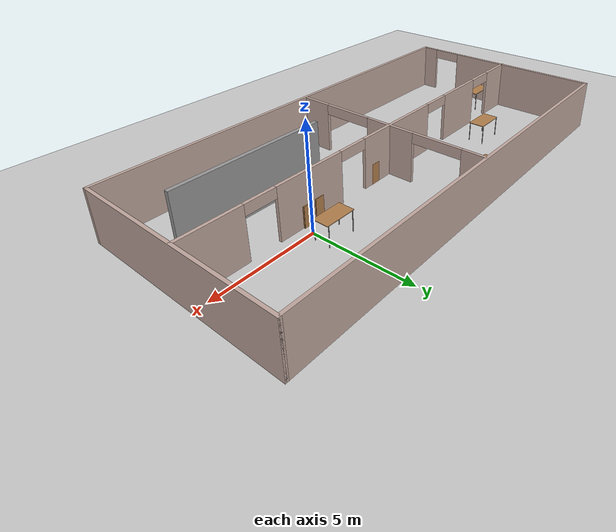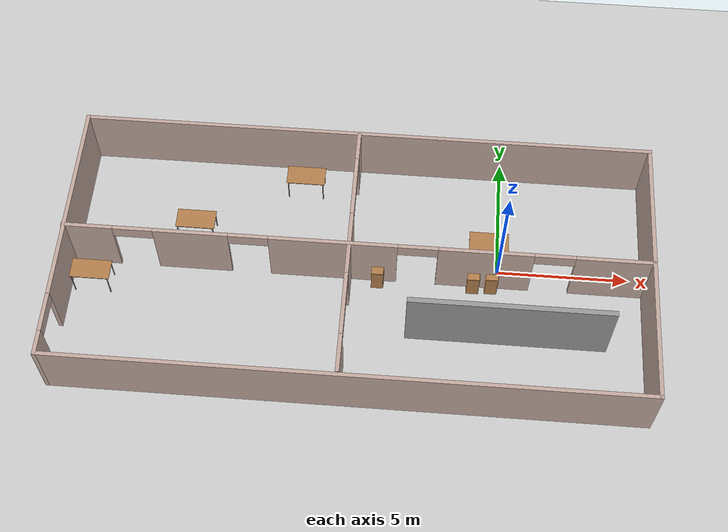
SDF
<sdf version="1.6">
 <world name="default">
  <light name="sun" type="directional">
   <pose>0 0 10 0 -0 0</pose>
   <diffuse>0.8 0.8 0.8 1</diffuse>
   <specular>0.1 0.1 0.1 1</specular>
   <attenuation>
    <range>1000</range>
    <constant>0.9</constant>
    <linear>0.01</linear>
    <quadratic>0.001</quadratic>
   </attenuation>
   <direction>-0.5 0.5 -1</direction>
  </light>
  <model name="ground_plane">
   <static>1</static>
   <link name="link">
    <collision name="collision">
     <geometry><plane><normal>0 0 1</normal><size>100 100</size></plane></geometry>
     <surface><friction><ode><mu>100</mu><mu2>50</mu2></ode></friction></surface>
    </collision>
    <visual name="visual">
     <cast_shadows>0</cast_shadows>
     <geometry><plane><normal>0 0 1</normal><size>100 100</size></plane></geometry>
     <material>
      <script><uri>file://media/materials/scripts/gazebo.material</uri><name>Gazebo/Grey</name></script>
     </material>
    </visual>
   </link>
  </model>
  <gravity>0 0 -9.8</gravity>
  <magnetic_field>6e-06 2.3e-05 -4.2e-05</magnetic_field>
  <atmosphere type="adiabatic"/>
  <physics name="default_physics" default="0" type="ode">
   <max_step_size>0.001</max_step_size>
   <real_time_factor>1</real_time_factor>
   <real_time_update_rate>1000</real_time_update_rate>
  </physics>
  <scene><ambient>0.4 0.4 0.4 1</ambient><background>0.7 0.7 0.7 1</background><shadows>1</shadows></scene>
  <spherical_coordinates>
   <surface_model>EARTH_WGS84</surface_model>
   <latitude_deg>0</latitude_deg>
   <longitude_deg>0</longitude_deg>
   <elevation>0</elevation>
   <heading_deg>0</heading_deg>
  </spherical_coordinates>
  <model name="mybuilding">
   <pose>-5.3944 -0.795609 0 0 -0 0</pose>
   <link name="Wall_1">
    <pose>-10.9097 0 0 0 -0 1.5708</pose>
    <visual name="Wall_1_Visual_0">
     <pose>-4.76721 0 1.25 0 -0 0</pose>
     <geometry><box><size>0.965586 0.15 2.5</size></box></geometry>
     <material>
      <script><uri>file://media/materials/scripts/gazebo.material</uri><name>Gazebo/Grey</name></script>
      <ambient>0.760784 0.662745 0.627451 1</ambient>
     </material>
     <meta><layer>0</layer></meta>
    </visual>
    <collision name="Wall_1_Collision_0">
     <geometry><box><size>0.965586 0.15 2.5</size></box></geometry>
     <pose>-4.76721 0 1.25 0 -0 0</pose>
    </collision>
    <visual name="Wall_1_Visual_1">
     <pose>1.23279 0 1.25 0 -0 0</pose>
     <geometry><box><size>8.03441 0.15 2.5</size></box></geometry>
     <material>
      <script><uri>file://media/materials/scripts/gazebo.material</uri><name>Gazebo/Grey</name></script>
      <ambient>0.760784 0.662745 0.627451 1</ambient>
     </material>
     <meta><layer>0</layer></meta>
    </visual>
    <collision name="Wall_1_Collision_1">
     <geometry><box><size>8.03441 0.15 2.5</size></box></geometry>
     <pose>1.23279 0 1.25 0 -0 0</pose>
    </collision>
    <visual name="Wall_1_Visual_2">
     <pose>-3.53441 0 2.25 0 -0 0</pose>
     <geometry><box><size>1.5 0.15 0.5</size></box></geometry>
     <material>
      <script><uri>file://media/materials/scripts/gazebo.material</uri><name>Gazebo/Grey</name></script>
      <ambient>0.760784 0.662745 0.627451 1</ambient>
     </material>
     <meta><layer>0</layer></meta>
    </visual>
    <collision name="Wall_1_Collision_2">
     <geometry><box><size>1.5 0.15 0.5</size></box></geometry>
     <pose>-3.53441 0 2.25 0 -0 0</pose>
    </collision>
   </link>
   <link name="Wall_2">
    <collision name="Wall_2_Collision">
     <geometry><box><size>22 0.15 2.5</size></box></geometry>
     <pose>0 0 1.25 0 -0 0</pose>
    </collision>
    <visual name="Wall_2_Visual">
     <pose>0 0 1.25 0 -0 0</pose>
     <geometry><box><size>22 0.15 2.5</size></box></geometry>
     <material>
      <script><uri>file://media/materials/scripts/gazebo.material</uri><name>Gazebo/Grey</name></script>
      <ambient>0.760784 0.662745 0.627451 1</ambient>
     </material>
     <meta><layer>0</layer></meta>
    </visual>
    <pose>0.015294 5.175 0 0 -0 0</pose>
   </link>
   <link name="Wall_3">
    <collision name="Wall_3_Collision">
     <geometry><box><size>10.5 0.15 2.5</size></box></geometry>
     <pose>0 0 1.25 0 -0 0</pose>
    </collision>
    <visual name="Wall_3_Visual">
     <pose>0 0 1.25 0 -0 0</pose>
     <geometry><box><size>10.5 0.15 2.5</size></box></geometry>
     <material>
      <script><uri>file://media/materials/scripts/gazebo.material</uri><name>Gazebo/Grey</name></script>
      <ambient>0.760784 0.662745 0.627451 1</ambient>
     </material>
     <meta><layer>0</layer></meta>
    </visual>
    <pose>10.9403 0 0 0 0 -1.5708</pose>
   </link>
   <link name="Wall_4">
    <collision name="Wall_4_Collision">
     <geometry><box><size>22 0.15 2.5</size></box></geometry>
     <pose>0 0 1.25 0 -0 0</pose>
    </collision>
    <visual name="Wall_4_Visual">
     <pose>0 0 1.25 0 -0 0</pose>
     <geometry><box><size>22 0.15 2.5</size></box></geometry>
     <material>
      <script><uri>file://media/materials/scripts/gazebo.material</uri><name>Gazebo/Grey</name></script>
      <ambient>0.760784 0.662745 0.627451 1</ambient>
     </material>
     <meta><layer>0</layer></meta>
    </visual>
    <pose>0.015294 -5.175 0 0 -0 3.14159</pose>
   </link>
   <link name="Wall_6">
    <pose>-0.015296 0.17829 0 0 -0 0</pose>
    <visual name="Wall_6_Visual_0">
     <pose>-10.0374 0 1.25 0 -0 0</pose>
     <geometry><box><size>1.92517 0.15 2.5</size></box></geometry>
     <material>
      <script><uri>file://media/materials/scripts/gazebo.material</uri><name>Gazebo/Grey</name></script>
      <ambient>0.760784 0.662745 0.627451 1</ambient>
     </material>
     <meta><layer>0</layer></meta>
    </visual>
    <collision name="Wall_6_Collision_0">
     <geometry><box><size>1.92517 0.15 2.5</size></box></geometry>
     <pose>-10.0374 0 1.25 0 -0 0</pose>
    </collision>
    <visual name="Wall_6_Visual_1">
     <pose>-6.16822 0 1.25 0 -0 0</pose>
     <geometry><box><size>2.81322 0.15 2.5</size></box></geometry>
     <material>
      <script><uri>file://media/materials/scripts/gazebo.material</uri><name>Gazebo/Grey</name></script>
      <ambient>0.760784 0.662745 0.627451 1</ambient>
     </material>
     <meta><layer>0</layer></meta>
    </visual>
    <collision name="Wall_6_Collision_1">
     <geometry><box><size>2.81322 0.15 2.5</size></box></geometry>
     <pose>-6.16822 0 1.25 0 -0 0</pose>
    </collision>
    <visual name="Wall_6_Visual_2">
     <pose>-0.860815 0 1.25 0 -0 0</pose>
     <geometry><box><size>4.80159 0.15 2.5</size></box></geometry>
     <material>
      <script><uri>file://media/materials/scripts/gazebo.material</uri><name>Gazebo/Grey</name></script>
      <ambient>0.760784 0.662745 0.627451 1</ambient>
     </material>
     <meta><layer>0</layer></meta>
    </visual>
    <collision name="Wall_6_Collision_2">
     <geometry><box><size>4.80159 0.15 2.5</size></box></geometry>
     <pose>-0.860815 0 1.25 0 -0 0</pose>
    </collision>
    <visual name="Wall_6_Visual_3">
     <pose>4.81367 0 1.25 0 -0 0</pose>
     <geometry><box><size>3.54739 0.15 2.5</size></box></geometry>
     <material>
      <script><uri>file://media/materials/scripts/gazebo.material</uri><name>Gazebo/Grey</name></script>
      <ambient>0.760784 0.662745 0.627451 1</ambient>
     </material>
     <meta><layer>0</layer></meta>
    </visual>
    <collision name="Wall_6_Collision_3">
     <geometry><box><size>3.54739 0.15 2.5</size></box></geometry>
     <pose>4.81367 0 1.25 0 -0 0</pose>
    </collision>
    <visual name="Wall_6_Visual_4">
     <pose>9.54368 0 1.25 0 -0 0</pose>
     <geometry><box><size>2.91263 0.15 2.5</size></box></geometry>
     <material>
      <script><uri>file://media/materials/scripts/gazebo.material</uri><name>Gazebo/Grey</name></script>
      <ambient>0.760784 0.662745 0.627451 1</ambient>
     </material>
     <meta><layer>0</layer></meta>
    </visual>
    <collision name="Wall_6_Collision_4">
     <geometry><box><size>2.91263 0.15 2.5</size></box></geometry>
     <pose>9.54368 0 1.25 0 -0 0</pose>
    </collision>
    <visual name="Wall_6_Visual_5">
     <pose>-8.32483 0 2.25 0 -0 0</pose>
     <geometry><box><size>1.5 0.15 0.5</size></box></geometry>
     <material>
      <script><uri>file://media/materials/scripts/gazebo.material</uri><name>Gazebo/Grey</name></script>
      <ambient>0.760784 0.662745 0.627451 1</ambient>
     </material>
     <meta><layer>0</layer></meta>
    </visual>
    <collision name="Wall_6_Collision_5">
     <geometry><box><size>1.5 0.15 0.5</size></box></geometry>
     <pose>-8.32483 0 2.25 0 -0 0</pose>
    </collision>
    <visual name="Wall_6_Visual_6">
     <pose>-4.01161 0 2.25 0 -0 0</pose>
     <geometry><box><size>1.5 0.15 0.5</size></box></geometry>
     <material>
      <script><uri>file://media/materials/scripts/gazebo.material</uri><name>Gazebo/Grey</name></script>
      <ambient>0.760784 0.662745 0.627451 1</ambient>
     </material>
     <meta><layer>0</layer></meta>
    </visual>
    <collision name="Wall_6_Collision_6">
     <geometry><box><size>1.5 0.15 0.5</size></box></geometry>
     <pose>-4.01161 0 2.25 0 -0 0</pose>
    </collision>
    <visual name="Wall_6_Visual_7">
     <pose>2.28998 0 2.25 0 -0 0</pose>
     <geometry><box><size>1.5 0.15 0.5</size></box></geometry>
     <material>
      <script><uri>file://media/materials/scripts/gazebo.material</uri><name>Gazebo/Grey</name></script>
      <ambient>0.760784 0.662745 0.627451 1</ambient>
     </material>
     <meta><layer>0</layer></meta>
    </visual>
    <collision name="Wall_6_Collision_7">
     <geometry><box><size>1.5 0.15 0.5</size></box></geometry>
     <pose>2.28998 0 2.25 0 -0 0</pose>
    </collision>
    <visual name="Wall_6_Visual_8">
     <pose>7.33737 0 2.25 0 -0 0</pose>
     <geometry><box><size>1.5 0.15 0.5</size></box></geometry>
     <material>
      <script><uri>file://media/materials/scripts/gazebo.material</uri><name>Gazebo/Grey</name></script>
      <ambient>0.760784 0.662745 0.627451 1</ambient>
     </material>
     <meta><layer>0</layer></meta>
    </visual>
    <collision name="Wall_6_Collision_8">
     <geometry><box><size>1.5 0.15 0.5</size></box></geometry>
     <pose>7.33737 0 2.25 0 -0 0</pose>
    </collision>
   </link>
   <link name="Wall_8">
    <pose>-0.264307 0.053317 0 0 0 -1.5708</pose>
    <visual name="Wall_8_Visual_0">
     <pose>-4.53478 0 1.25 0 -0 0</pose>
     <geometry><box><size>1.18045 0.15 2.5</size></box></geometry>
     <material>
      <script><uri>file://media/materials/scripts/gazebo.material</uri><name>Gazebo/Grey</name></script>
      <ambient>0.760784 0.662745 0.627451 1</ambient>
     </material>
     <meta><layer>0</layer></meta>
    </visual>
    <collision name="Wall_8_Collision_0">
     <geometry><box><size>1.18045 0.15 2.5</size></box></geometry>
     <pose>-4.53478 0 1.25 0 -0 0</pose>
    </collision>
    <visual name="Wall_8_Visual_1">
     <pose>-0.155563 0 1.25 0 -0 0</pose>
     <geometry><box><size>2.57798 0.15 2.5</size></box></geometry>
     <material>
      <script><uri>file://media/materials/scripts/gazebo.material</uri><name>Gazebo/Grey</name></script>
      <ambient>0.760784 0.662745 0.627451 1</ambient>
     </material>
     <meta><layer>0</layer></meta>
    </visual>
    <collision name="Wall_8_Collision_1">
     <geometry><box><size>2.57798 0.15 2.5</size></box></geometry>
     <pose>-0.155563 0 1.25 0 -0 0</pose>
    </collision>
    <visual name="Wall_8_Visual_2">
     <pose>4.37921 0 1.25 0 -0 0</pose>
     <geometry><box><size>1.49157 0.15 2.5</size></box></geometry>
     <material>
      <script><uri>file://media/materials/scripts/gazebo.material</uri><name>Gazebo/Grey</name></script>
      <ambient>0.760784 0.662745 0.627451 1</ambient>
     </material>
     <meta><layer>0</layer></meta>
    </visual>
    <collision name="Wall_8_Collision_2">
     <geometry><box><size>1.49157 0.15 2.5</size></box></geometry>
     <pose>4.37921 0 1.25 0 -0 0</pose>
    </collision>
    <visual name="Wall_8_Visual_3">
     <pose>-2.69455 0 2.25 0 -0 0</pose>
     <geometry><box><size>2.5 0.15 0.5</size></box></geometry>
     <material>
      <script><uri>file://media/materials/scripts/gazebo.material</uri><name>Gazebo/Grey</name></script>
      <ambient>0.760784 0.662745 0.627451 1</ambient>
     </material>
     <meta><layer>0</layer></meta>
    </visual>
    <collision name="Wall_8_Collision_3">
     <geometry><box><size>2.5 0.15 0.5</size></box></geometry>
     <pose>-2.69455 0 2.25 0 -0 0</pose>
    </collision>
    <visual name="Wall_8_Visual_4">
     <pose>2.38343 0 2.25 0 -0 0</pose>
     <geometry><box><size>2.5 0.15 0.5</size></box></geometry>
     <material>
      <script><uri>file://media/materials/scripts/gazebo.material</uri><name>Gazebo/Grey</name></script>
      <ambient>0.760784 0.662745 0.627451 1</ambient>
     </material>
     <meta><layer>0</layer></meta>
    </visual>
    <collision name="Wall_8_Collision_4">
     <geometry><box><size>2.5 0.15 0.5</size></box></geometry>
     <pose>2.38343 0 2.25 0 -0 0</pose>
    </collision>
   </link>
   <static>1</static>
  </model>
  <model name="cabinet">
   <static>1</static>
   <link name="cabinet_bottom_plate">
    <inertial>
     <pose>0 0 -1 0 -0 0</pose>
     <inertia><ixx>2.05</ixx><ixy>0</ixy><ixz>0</ixz><iyy>2.05</iyy><iyz>0</iyz><izz>2.05</izz></inertia>
     <mass>25</mass>
    </inertial>
    <collision name="cabinet_bottom_plate_geom">
     <pose>0 0 0.01 0 -0 0</pose>
     <geometry><box><size>0.45 0.45 0.02</size></box></geometry>
    </collision>
    <visual name="cabinet_bottom_plate_geom_visual">
     <pose>0 0 0.01 0 -0 0</pose>
     <geometry><box><size>0.45 0.45 0.02</size></box></geometry>
     <material>
      <script><uri>file://media/materials/scripts/gazebo.material</uri><name>Gazebo/Wood</name></script>
     </material>
    </visual>
    <collision name="cabinet_bottom_plate_geom_cabinet_back_plate">
     <pose>0.235 0 0.51 0 -0 0</pose>
     <geometry><box><size>0.02 0.45 1.02</size></box></geometry>
    </collision>
    <visual name="cabinet_bottom_plate_geom_cabinet_back_plate_visual">
     <pose>0.235 0 0.51 0 -0 0</pose>
     <geometry><box><size>0.02 0.45 1.02</size></box></geometry>
     <material>
      <script><uri>file://media/materials/scripts/gazebo.material</uri><name>Gazebo/Wood</name></script>
     </material>
    </visual>
    <collision name="cabinet_bottom_plate_geom_cabinet_left_plate">
     <pose>0 0.235 0.51 0 -0 0</pose>
     <geometry><box><size>0.45 0.02 1.02</size></box></geometry>
    </collision>
    <visual name="cabinet_bottom_plate_geom_cabinet_left_plate_visual">
     <pose>0 0.235 0.51 0 -0 0</pose>
     <geometry><box><size>0.45 0.02 1.02</size></box></geometry>
     <material>
      <script><uri>file://media/materials/scripts/gazebo.material</uri><name>Gazebo/Wood</name></script>
     </material>
    </visual>
    <collision name="cabinet_bottom_plate_geom_cabinet_middle_plate">
     <pose>0 0 0.51 0 -0 0</pose>
     <geometry><box><size>0.45 0.45 0.02</size></box></geometry>
    </collision>
    <visual name="cabinet_bottom_plate_geom_cabinet_middle_plate_visual">
     <pose>0 0 0.51 0 -0 0</pose>
     <geometry><box><size>0.45 0.45 0.02</size></box></geometry>
     <material>
      <script><uri>file://media/materials/scripts/gazebo.material</uri><name>Gazebo/Wood</name></script>
     </material>
    </visual>
    <collision name="cabinet_bottom_plate_geom_cabinet_right_plate">
     <pose>0 -0.235 0.51 0 -0 0</pose>
     <geometry><box><size>0.45 0.02 1.02</size></box></geometry>
    </collision>
    <visual name="cabinet_bottom_plate_geom_cabinet_right_plate_visual">
     <pose>0 -0.235 0.51 0 -0 0</pose>
     <geometry><box><size>0.45 0.02 1.02</size></box></geometry>
     <material>
      <script><uri>file://media/materials/scripts/gazebo.material</uri><name>Gazebo/Wood</name></script>
     </material>
    </visual>
    <collision name="cabinet_bottom_plate_geom_cabinet_top_plate">
     <pose>0 0 1.01 0 -0 0</pose>
     <geometry><box><size>0.45 0.45 0.02</size></box></geometry>
    </collision>
    <visual name="cabinet_bottom_plate_geom_cabinet_top_plate_visual">
     <pose>0 0 1.01 0 -0 0</pose>
     <geometry><box><size>0.45 0.45 0.02</size></box></geometry>
     <material>
      <script><uri>file://media/materials/scripts/gazebo.material</uri><name>Gazebo/Wood</name></script>
     </material>
    </visual>
   </link>
   <pose>-4.57744 -0.780665 0 0 -0 0</pose>
  </model>
  <model name="cabinet_0">
   <static>1</static>
   <link name="cabinet_bottom_plate">
    <inertial>
     <pose>0 0 -1 0 -0 0</pose>
     <inertia><ixx>2.05</ixx><ixy>0</ixy><ixz>0</ixz><iyy>2.05</iyy><iyz>0</iyz><izz>2.05</izz></inertia>
     <mass>25</mass>
    </inertial>
    <collision name="cabinet_bottom_plate_geom">
     <pose>0 0 0.01 0 -0 0</pose>
     <geometry><box><size>0.45 0.45 0.02</size></box></geometry>
    </collision>
    <visual name="cabinet_bottom_plate_geom_visual">
     <pose>0 0 0.01 0 -0 0</pose>
     <geometry><box><size>0.45 0.45 0.02</size></box></geometry>
     <material>
      <script><uri>file://media/materials/scripts/gazebo.material</uri><name>Gazebo/Wood</name></script>
     </material>
    </visual>
    <collision name="cabinet_bottom_plate_geom_cabinet_back_plate">
     <pose>0.235 0 0.51 0 -0 0</pose>
     <geometry><box><size>0.02 0.45 1.02</size></box></geometry>
    </collision>
    <visual name="cabinet_bottom_plate_geom_cabinet_back_plate_visual">
     <pose>0.235 0 0.51 0 -0 0</pose>
     <geometry><box><size>0.02 0.45 1.02</size></box></geometry>
     <material>
      <script><uri>file://media/materials/scripts/gazebo.material</uri><name>Gazebo/Wood</name></script>
     </material>
    </visual>
    <collision name="cabinet_bottom_plate_geom_cabinet_left_plate">
     <pose>0 0.235 0.51 0 -0 0</pose>
     <geometry><box><size>0.45 0.02 1.02</size></box></geometry>
    </collision>
    <visual name="cabinet_bottom_plate_geom_cabinet_left_plate_visual">
     <pose>0 0.235 0.51 0 -0 0</pose>
     <geometry><box><size>0.45 0.02 1.02</size></box></geometry>
     <material>
      <script><uri>file://media/materials/scripts/gazebo.material</uri><name>Gazebo/Wood</name></script>
     </material>
    </visual>
    <collision name="cabinet_bottom_plate_geom_cabinet_middle_plate">
     <pose>0 0 0.51 0 -0 0</pose>
     <geometry><box><size>0.45 0.45 0.02</size></box></geometry>
    </collision>
    <visual name="cabinet_bottom_plate_geom_cabinet_middle_plate_visual">
     <pose>0 0 0.51 0 -0 0</pose>
     <geometry><box><size>0.45 0.45 0.02</size></box></geometry>
     <material>
      <script><uri>file://media/materials/scripts/gazebo.material</uri><name>Gazebo/Wood</name></script>
     </material>
    </visual>
    <collision name="cabinet_bottom_plate_geom_cabinet_right_plate">
     <pose>0 -0.235 0.51 0 -0 0</pose>
     <geometry><box><size>0.45 0.02 1.02</size></box></geometry>
    </collision>
    <visual name="cabinet_bottom_plate_geom_cabinet_right_plate_visual">
     <pose>0 -0.235 0.51 0 -0 0</pose>
     <geometry><box><size>0.45 0.02 1.02</size></box></geometry>
     <material>
      <script><uri>file://media/materials/scripts/gazebo.material</uri><name>Gazebo/Wood</name></script>
     </material>
    </visual>
    <collision name="cabinet_bottom_plate_geom_cabinet_top_plate">
     <pose>0 0 1.01 0 -0 0</pose>
     <geometry><box><size>0.45 0.45 0.02</size></box></geometry>
    </collision>
    <visual name="cabinet_bottom_plate_geom_cabinet_top_plate_visual">
     <pose>0 0 1.01 0 -0 0</pose>
     <geometry><box><size>0.45 0.45 0.02</size></box></geometry>
     <material>
      <script><uri>file://media/materials/scripts/gazebo.material</uri><name>Gazebo/Wood</name></script>
     </material>
    </visual>
   </link>
   <pose>-0.952422 -0.755548 0 0 -0 0</pose>
  </model>
  <model name="cabinet_1">
   <static>1</static>
   <link name="cabinet_bottom_plate">
    <inertial>
     <pose>0 0 -1 0 -0 0</pose>
     <inertia><ixx>2.05</ixx><ixy>0</ixy><ixz>0</ixz><iyy>2.05</iyy><iyz>0</iyz><izz>2.05</izz></inertia>
     <mass>25</mass>
    </inertial>
    <collision name="cabinet_bottom_plate_geom">
     <pose>0 0 0.01 0 -0 0</pose>
     <geometry><box><size>0.45 0.45 0.02</size></box></geometry>
    </collision>
    <visual name="cabinet_bottom_plate_geom_visual">
     <pose>0 0 0.01 0 -0 0</pose>
     <geometry><box><size>0.45 0.45 0.02</size></box></geometry>
     <material>
      <script><uri>file://media/materials/scripts/gazebo.material</uri><name>Gazebo/Wood</name></script>
     </material>
    </visual>
    <collision name="cabinet_bottom_plate_geom_cabinet_back_plate">
     <pose>0.235 0 0.51 0 -0 0</pose>
     <geometry><box><size>0.02 0.45 1.02</size></box></geometry>
    </collision>
    <visual name="cabinet_bottom_plate_geom_cabinet_back_plate_visual">
     <pose>0.235 0 0.51 0 -0 0</pose>
     <geometry><box><size>0.02 0.45 1.02</size></box></geometry>
     <material>
      <script><uri>file://media/materials/scripts/gazebo.material</uri><name>Gazebo/Wood</name></script>
     </material>
    </visual>
    <collision name="cabinet_bottom_plate_geom_cabinet_left_plate">
     <pose>0 0.235 0.51 0 -0 0</pose>
     <geometry><box><size>0.45 0.02 1.02</size></box></geometry>
    </collision>
    <visual name="cabinet_bottom_plate_geom_cabinet_left_plate_visual">
     <pose>0 0.235 0.51 0 -0 0</pose>
     <geometry><box><size>0.45 0.02 1.02</size></box></geometry>
     <material>
      <script><uri>file://media/materials/scripts/gazebo.material</uri><name>Gazebo/Wood</name></script>
     </material>
    </visual>
    <collision name="cabinet_bottom_plate_geom_cabinet_middle_plate">
     <pose>0 0 0.51 0 -0 0</pose>
     <geometry><box><size>0.45 0.45 0.02</size></box></geometry>
    </collision>
    <visual name="cabinet_bottom_plate_geom_cabinet_middle_plate_visual">
     <pose>0 0 0.51 0 -0 0</pose>
     <geometry><box><size>0.45 0.45 0.02</size></box></geometry>
     <material>
      <script><uri>file://media/materials/scripts/gazebo.material</uri><name>Gazebo/Wood</name></script>
     </material>
    </visual>
    <collision name="cabinet_bottom_plate_geom_cabinet_right_plate">
     <pose>0 -0.235 0.51 0 -0 0</pose>
     <geometry><box><size>0.45 0.02 1.02</size></box></geometry>
    </collision>
    <visual name="cabinet_bottom_plate_geom_cabinet_right_plate_visual">
     <pose>0 -0.235 0.51 0 -0 0</pose>
     <geometry><box><size>0.45 0.02 1.02</size></box></geometry>
     <material>
      <script><uri>file://media/materials/scripts/gazebo.material</uri><name>Gazebo/Wood</name></script>
     </material>
    </visual>
    <collision name="cabinet_bottom_plate_geom_cabinet_top_plate">
     <pose>0 0 1.01 0 -0 0</pose>
     <geometry><box><size>0.45 0.45 0.02</size></box></geometry>
    </collision>
    <visual name="cabinet_bottom_plate_geom_cabinet_top_plate_visual">
     <pose>0 0 1.01 0 -0 0</pose>
     <geometry><box><size>0.45 0.45 0.02</size></box></geometry>
     <material>
      <script><uri>file://media/materials/scripts/gazebo.material</uri><name>Gazebo/Wood</name></script>
     </material>
    </visual>
   </link>
   <pose>-0.260081 -0.717751 0 0 -0 0</pose>
  </model>
  <model name="grey_wall">
   <static>1</static>
   <link name="link">
    <pose>0 0 1.4 0 -0 0</pose>
    <collision name="collision"><geometry><box><size>7.5 0.2 2.8</size></box></geometry></collision>
    <visual name="visual">
     <cast_shadows>0</cast_shadows>
     <geometry><box><size>7.5 0.2 2.8</size></box></geometry>
     <material>
      <script>
       <uri>model://grey_wall/materials/scripts</uri>
       <uri>model://grey_wall/materials/textures</uri>
       <name>vrc/grey_wall</name>
      </script>
     </material>
    </visual>
   </link>
   <pose>0.348783 -2.9961 0 0 -0 0</pose>
  </model>
  <model name="table">
   <static>1</static>
   <link name="link">
    <collision name="surface">
     <pose>0 0 1 0 -0 0</pose>
     <geometry><box><size>1.5 0.8 0.03</size></box></geometry>
     <surface><friction><ode><mu>0.6</mu><mu2>0.6</mu2></ode></friction></surface>
    </collision>
    <visual name="visual1">
     <pose>0 0 1 0 -0 0</pose>
     <geometry><box><size>1.5 0.8 0.03</size></box></geometry>
     <material>
      <script><uri>file://media/materials/scripts/gazebo.material</uri><name>Gazebo/Wood</name></script>
     </material>
    </visual>
    <collision name="front_left_leg">
     <pose>0.68 0.38 0.5 0 -0 0</pose>
     <geometry><cylinder><radius>0.02</radius><length>1</length></cylinder></geometry>
    </collision>
    <visual name="front_left_leg">
     <pose>0.68 0.38 0.5 0 -0 0</pose>
     <geometry><cylinder><radius>0.02</radius><length>1</length></cylinder></geometry>
     <material>
      <script><uri>file://media/materials/scripts/gazebo.material</uri><name>Gazebo/Grey</name></script>
     </material>
    </visual>
    <collision name="front_right_leg">
     <pose>0.68 -0.38 0.5 0 -0 0</pose>
     <geometry><cylinder><radius>0.02</radius><length>1</length></cylinder></geometry>
    </collision>
    <visual name="front_right_leg">
     <pose>0.68 -0.38 0.5 0 -0 0</pose>
     <geometry><cylinder><radius>0.02</radius><length>1</length></cylinder></geometry>
     <material>
      <script><uri>file://media/materials/scripts/gazebo.material</uri><name>Gazebo/Grey</name></script>
     </material>
    </visual>
    <collision name="back_right_leg">
     <pose>-0.68 -0.38 0.5 0 -0 0</pose>
     <geometry><cylinder><radius>0.02</radius><length>1</length></cylinder></geometry>
    </collision>
    <visual name="back_right_leg">
     <pose>-0.68 -0.38 0.5 0 -0 0</pose>
     <geometry><cylinder><radius>0.02</radius><length>1</length></cylinder></geometry>
     <material>
      <script><uri>file://media/materials/scripts/gazebo.material</uri><name>Gazebo/Grey</name></script>
     </material>
    </visual>
    <collision name="back_left_leg">
     <pose>-0.68 0.38 0.5 0 -0 0</pose>
     <geometry><cylinder><radius>0.02</radius><length>1</length></cylinder></geometry>
    </collision>
    <visual name="back_left_leg">
     <pose>-0.68 0.38 0.5 0 -0 0</pose>
     <geometry><cylinder><radius>0.02</radius><length>1</length></cylinder></geometry>
     <material>
      <script><uri>file://media/materials/scripts/gazebo.material</uri><name>Gazebo/Grey</name></script>
     </material>
    </visual>
   </link>
   <pose>-7.6694 3.27618 0 0 -0 0</pose>
  </model>
  <model name="table_0">
   <static>1</static>
   <link name="link">
    <collision name="surface">
     <pose>0 0 1 0 -0 0</pose>
     <geometry><box><size>1.5 0.8 0.03</size></box></geometry>
     <surface><friction><ode><mu>0.6</mu><mu2>0.6</mu2></ode></friction></surface>
    </collision>
    <visual name="visual1">
     <pose>0 0 1 0 -0 0</pose>
     <geometry><box><size>1.5 0.8 0.03</size></box></geometry>
     <material>
      <script><uri>file://media/materials/scripts/gazebo.material</uri><name>Gazebo/Wood</name></script>
     </material>
    </visual>
    <collision name="front_left_leg">
     <pose>0.68 0.38 0.5 0 -0 0</pose>
     <geometry><cylinder><radius>0.02</radius><length>1</length></cylinder></geometry>
    </collision>
    <visual name="front_left_leg">
     <pose>0.68 0.38 0.5 0 -0 0</pose>
     <geometry><cylinder><radius>0.02</radius><length>1</length></cylinder></geometry>
     <material>
      <script><uri>file://media/materials/scripts/gazebo.material</uri><name>Gazebo/Grey</name></script>
     </material>
    </visual>
    <collision name="front_right_leg">
     <pose>0.68 -0.38 0.5 0 -0 0</pose>
     <geometry><cylinder><radius>0.02</radius><length>1</length></cylinder></geometry>
    </collision>
    <visual name="front_right_leg">
     <pose>0.68 -0.38 0.5 0 -0 0</pose>
     <geometry><cylinder><radius>0.02</radius><length>1</length></cylinder></geometry>
     <material>
      <script><uri>file://media/materials/scripts/gazebo.material</uri><name>Gazebo/Grey</name></script>
     </material>
    </visual>
    <collision name="back_right_leg">
     <pose>-0.68 -0.38 0.5 0 -0 0</pose>
     <geometry><cylinder><radius>0.02</radius><length>1</length></cylinder></geometry>
    </collision>
    <visual name="back_right_leg">
     <pose>-0.68 -0.38 0.5 0 -0 0</pose>
     <geometry><cylinder><radius>0.02</radius><length>1</length></cylinder></geometry>
     <material>
      <script><uri>file://media/materials/scripts/gazebo.material</uri><name>Gazebo/Grey</name></script>
     </material>
    </visual>
    <collision name="back_left_leg">
     <pose>-0.68 0.38 0.5 0 -0 0</pose>
     <geometry><cylinder><radius>0.02</radius><length>1</length></cylinder></geometry>
    </collision>
    <visual name="back_left_leg">
     <pose>-0.68 0.38 0.5 0 -0 0</pose>
     <geometry><cylinder><radius>0.02</radius><length>1</length></cylinder></geometry>
     <material>
      <script><uri>file://media/materials/scripts/gazebo.material</uri><name>Gazebo/Grey</name></script>
     </material>
    </visual>
   </link>
   <pose>-11.7219 0.926566 0 0 -0 0</pose>
  </model>
  <model name="table_1">
   <static>1</static>
   <link name="link">
    <collision name="surface">
     <pose>0 0 1 0 -0 0</pose>
     <geometry><box><size>1.5 0.8 0.03</size></box></geometry>
     <surface><friction><ode><mu>0.6</mu><mu2>0.6</mu2></ode></friction></surface>
    </collision>
    <visual name="visual1">
     <pose>0 0 1 0 -0 0</pose>
     <geometry><box><size>1.5 0.8 0.03</size></box></geometry>
     <material>
      <script><uri>file://media/materials/scripts/gazebo.material</uri><name>Gazebo/Wood</name></script>
     </material>
    </visual>
    <collision name="front_left_leg">
     <pose>0.68 0.38 0.5 0 -0 0</pose>
     <geometry><cylinder><radius>0.02</radius><length>1</length></cylinder></geometry>
    </collision>
    <visual name="front_left_leg">
     <pose>0.68 0.38 0.5 0 -0 0</pose>
     <geometry><cylinder><radius>0.02</radius><length>1</length></cylinder></geometry>
     <material>
      <script><uri>file://media/materials/scripts/gazebo.material</uri><name>Gazebo/Grey</name></script>
     </material>
    </visual>
    <collision name="front_right_leg">
     <pose>0.68 -0.38 0.5 0 -0 0</pose>
     <geometry><cylinder><radius>0.02</radius><length>1</length></cylinder></geometry>
    </collision>
    <visual name="front_right_leg">
     <pose>0.68 -0.38 0.5 0 -0 0</pose>
     <geometry><cylinder><radius>0.02</radius><length>1</length></cylinder></geometry>
     <material>
      <script><uri>file://media/materials/scripts/gazebo.material</uri><name>Gazebo/Grey</name></script>
     </material>
    </visual>
    <collision name="back_right_leg">
     <pose>-0.68 -0.38 0.5 0 -0 0</pose>
     <geometry><cylinder><radius>0.02</radius><length>1</length></cylinder></geometry>
    </collision>
    <visual name="back_right_leg">
     <pose>-0.68 -0.38 0.5 0 -0 0</pose>
     <geometry><cylinder><radius>0.02</radius><length>1</length></cylinder></geometry>
     <material>
      <script><uri>file://media/materials/scripts/gazebo.material</uri><name>Gazebo/Grey</name></script>
     </material>
    </visual>
    <collision name="back_left_leg">
     <pose>-0.68 0.38 0.5 0 -0 0</pose>
     <geometry><cylinder><radius>0.02</radius><length>1</length></cylinder></geometry>
    </collision>
    <visual name="back_left_leg">
     <pose>-0.68 0.38 0.5 0 -0 0</pose>
     <geometry><cylinder><radius>0.02</radius><length>1</length></cylinder></geometry>
     <material>
      <script><uri>file://media/materials/scripts/gazebo.material</uri><name>Gazebo/Grey</name></script>
     </material>
    </visual>
   </link>
   <pose>-0.409661 0.753784 0 0 -0 0</pose>
  </model>
  <model name="table_2">
   <static>1</static>
   <link name="link">
    <collision name="surface">
     <pose>0 0 1 0 -0 0</pose>
     <geometry><box><size>1.5 0.8 0.03</size></box></geometry>
     <surface><friction><ode><mu>0.6</mu><mu2>0.6</mu2></ode></friction></surface>
    </collision>
    <visual name="visual1">
     <pose>0 0 1 0 -0 0</pose>
     <geometry><box><size>1.5 0.8 0.03</size></box></geometry>
     <material>
      <script><uri>file://media/materials/scripts/gazebo.material</uri><name>Gazebo/Wood</name></script>
     </material>
    </visual>
    <collision name="front_left_leg">
     <pose>0.68 0.38 0.5 0 -0 0</pose>
     <geometry><cylinder><radius>0.02</radius><length>1</length></cylinder></geometry>
    </collision>
    <visual name="front_left_leg">
     <pose>0.68 0.38 0.5 0 -0 0</pose>
     <geometry><cylinder><radius>0.02</radius><length>1</length></cylinder></geometry>
     <material>
      <script><uri>file://media/materials/scripts/gazebo.material</uri><name>Gazebo/Grey</name></script>
     </material>
    </visual>
    <collision name="front_right_leg">
     <pose>0.68 -0.38 0.5 0 -0 0</pose>
     <geometry><cylinder><radius>0.02</radius><length>1</length></cylinder></geometry>
    </collision>
    <visual name="front_right_leg">
     <pose>0.68 -0.38 0.5 0 -0 0</pose>
     <geometry><cylinder><radius>0.02</radius><length>1</length></cylinder></geometry>
     <material>
      <script><uri>file://media/materials/scripts/gazebo.material</uri><name>Gazebo/Grey</name></script>
     </material>
    </visual>
    <collision name="back_right_leg">
     <pose>-0.68 -0.38 0.5 0 -0 0</pose>
     <geometry><cylinder><radius>0.02</radius><length>1</length></cylinder></geometry>
    </collision>
    <visual name="back_right_leg">
     <pose>-0.68 -0.38 0.5 0 -0 0</pose>
     <geometry><cylinder><radius>0.02</radius><length>1</length></cylinder></geometry>
     <material>
      <script><uri>file://media/materials/scripts/gazebo.material</uri><name>Gazebo/Grey</name></script>
     </material>
    </visual>
    <collision name="back_left_leg">
     <pose>-0.68 0.38 0.5 0 -0 0</pose>
     <geometry><cylinder><radius>0.02</radius><length>1</length></cylinder></geometry>
    </collision>
    <visual name="back_left_leg">
     <pose>-0.68 0.38 0.5 0 -0 0</pose>
     <geometry><cylinder><radius>0.02</radius><length>1</length></cylinder></geometry>
     <material>
      <script><uri>file://media/materials/scripts/gazebo.material</uri><name>Gazebo/Grey</name></script>
     </material>
    </visual>
   </link>
   <pose>-15.3721 -1.59862 0 0 -0 0</pose>
  </model>
 </world>
</sdf>
